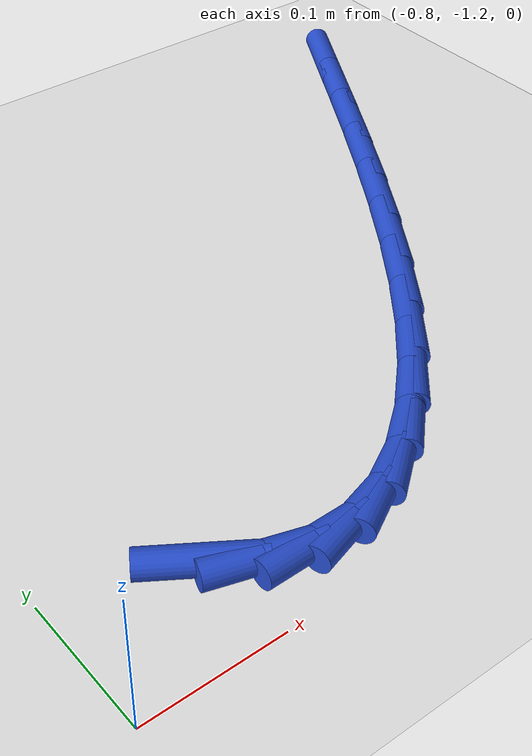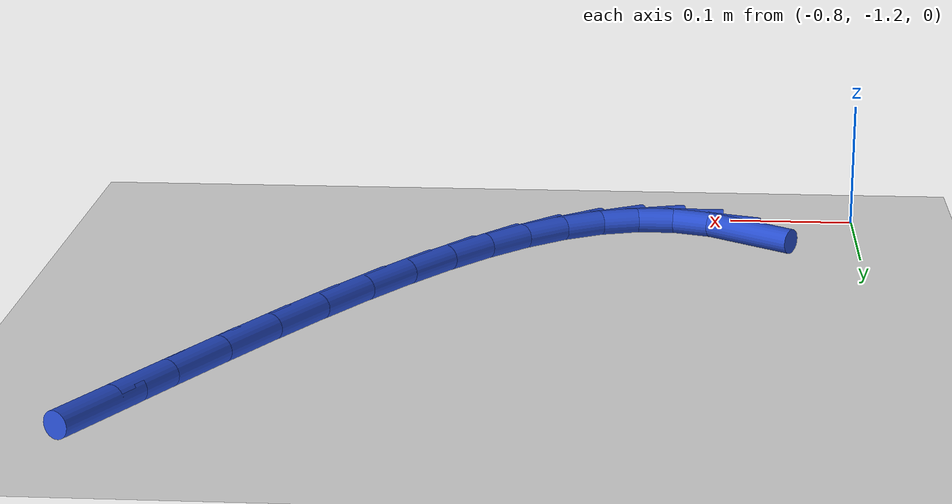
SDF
<sdf version="1.6">
 <world name="default">
  <model name="ground_plane">
   <static>1</static>
   <link name="link">
    <collision name="collision">
     <geometry><plane><normal>0 0 1</normal><size>100 100</size></plane></geometry>
     <surface><friction><ode><mu>100</mu><mu2>50</mu2></ode></friction></surface>
    </collision>
    <visual name="visual">
     <cast_shadows>0</cast_shadows>
     <geometry><plane><normal>0 0 1</normal><size>100 100</size></plane></geometry>
     <material>
      <script><uri>file://media/materials/scripts/gazebo.material</uri><name>Gazebo/WhiteGlow</name></script>
     </material>
    </visual>
   </link>
  </model>
  <model name="line">
   <link name="link_157">
    <pose>-0.7122693044522589 -1.13645913274962 0.01 0 1.57 -0.5885300878994439</pose>
    <collision name="collision">
     <geometry><cylinder><radius>0.01</radius><length>0.08</length></cylinder></geometry>
    </collision>
    <visual name="visual">
     <material>
      <script><name>Gazebo/Blue</name><uri>file://media/materials/scripts/gazebo.material</uri></script>
     </material>
     <geometry><cylinder><radius>0.01</radius><length>0.08</length></cylinder></geometry>
    </visual>
   </link>
   <link name="link_158">
    <pose>-0.6825759281236068 -1.1562773489614775 0.01 0 1.57 -0.3027651904013281</pose>
    <collision name="collision">
     <geometry><cylinder><radius>0.01</radius><length>0.08</length></cylinder></geometry>
    </collision>
    <visual name="visual">
     <material>
      <script><name>Gazebo/Blue</name><uri>file://media/materials/scripts/gazebo.material</uri></script>
     </material>
     <geometry><cylinder><radius>0.01</radius><length>0.08</length></cylinder></geometry>
    </visual>
   </link>
   <link name="link_159">
    <pose>-0.6526168572189454 -1.1656356231847373 0.01 0 1.57 0.008405451407896595</pose>
    <collision name="collision">
     <geometry><cylinder><radius>0.01</radius><length>0.08</length></cylinder></geometry>
    </collision>
    <visual name="visual">
     <material>
      <script><name>Gazebo/Blue</name><uri>file://media/materials/scripts/gazebo.material</uri></script>
     </material>
     <geometry><cylinder><radius>0.01</radius><length>0.08</length></cylinder></geometry>
    </visual>
   </link>
   <link name="link_160">
    <pose>-0.6224620434325002 -1.1653821523933396 0.01 0 1.57 0.2893728049764073</pose>
    <collision name="collision">
     <geometry><cylinder><radius>0.01</radius><length>0.08</length></cylinder></geometry>
    </collision>
    <visual name="visual">
     <material>
      <script><name>Gazebo/Blue</name><uri>file://media/materials/scripts/gazebo.material</uri></script>
     </material>
     <geometry><cylinder><radius>0.01</radius><length>0.08</length></cylinder></geometry>
    </visual>
   </link>
   <link name="link_161">
    <pose>-0.5921816678252931 -1.1563667801778714 0.01 0 1.57 0.5089664509785056</pose>
    <collision name="collision">
     <geometry><cylinder><radius>0.01</radius><length>0.08</length></cylinder></geometry>
    </collision>
    <visual name="visual">
     <material>
      <script><name>Gazebo/Blue</name><uri>file://media/materials/scripts/gazebo.material</uri></script>
     </material>
     <geometry><cylinder><radius>0.01</radius><length>0.08</length></cylinder></geometry>
    </visual>
   </link>
   <link name="link_162">
    <pose>-0.5618459114583457 -1.1394393501289228 0.01 0 1.57 0.669346000665174</pose>
    <collision name="collision">
     <geometry><cylinder><radius>0.01</radius><length>0.08</length></cylinder></geometry>
    </collision>
    <visual name="visual">
     <material>
      <script><name>Gazebo/Blue</name><uri>file://media/materials/scripts/gazebo.material</uri></script>
     </material>
     <geometry><cylinder><radius>0.01</radius><length>0.08</length></cylinder></geometry>
    </visual>
   </link>
   <link name="link_163">
    <pose>-0.5315249553926791 -1.1154497058370814 0.01 0 1.57 0.7848362692006946</pose>
    <collision name="collision">
     <geometry><cylinder><radius>0.01</radius><length>0.08</length></cylinder></geometry>
    </collision>
    <visual name="visual">
     <material>
      <script><name>Gazebo/Blue</name><uri>file://media/materials/scripts/gazebo.material</uri></script>
     </material>
     <geometry><cylinder><radius>0.01</radius><length>0.08</length></cylinder></geometry>
    </visual>
   </link>
   <link name="link_164">
    <pose>-0.5012889806893143 -1.085247690892937 0.01 0 1.57 0.8687403493943604</pose>
    <collision name="collision">
     <geometry><cylinder><radius>0.01</radius><length>0.08</length></cylinder></geometry>
    </collision>
    <visual name="visual">
     <material>
      <script><name>Gazebo/Blue</name><uri>file://media/materials/scripts/gazebo.material</uri></script>
     </material>
     <geometry><cylinder><radius>0.01</radius><length>0.08</length></cylinder></geometry>
    </visual>
   </link>
   <link name="link_165">
    <pose>-0.47120816840927304 -1.049683148887078 0.01 0 1.57 0.9305360280625101</pose>
    <collision name="collision">
     <geometry><cylinder><radius>0.01</radius><length>0.08</length></cylinder></geometry>
    </collision>
    <visual name="visual">
     <material>
      <script><name>Gazebo/Blue</name><uri>file://media/materials/scripts/gazebo.material</uri></script>
     </material>
     <geometry><cylinder><radius>0.01</radius><length>0.08</length></cylinder></geometry>
    </visual>
   </link>
   <link name="link_166">
    <pose>-0.44135269961357715 -1.009605923410094 0.01 0 1.57 0.9764908672191585</pose>
    <collision name="collision">
     <geometry><cylinder><radius>0.01</radius><length>0.08</length></cylinder></geometry>
    </collision>
    <visual name="visual">
     <material>
      <script><name>Gazebo/Blue</name><uri>file://media/materials/scripts/gazebo.material</uri></script>
     </material>
     <geometry><cylinder><radius>0.01</radius><length>0.08</length></cylinder></geometry>
    </visual>
   </link>
   <link name="link_167">
    <pose>-0.4117927553632467 -0.9658658580525729 0.01 0 1.57 1.0106757790673189</pose>
    <collision name="collision">
     <geometry><cylinder><radius>0.01</radius><length>0.08</length></cylinder></geometry>
    </collision>
    <visual name="visual">
     <material>
      <script><name>Gazebo/Blue</name><uri>file://media/materials/scripts/gazebo.material</uri></script>
     </material>
     <geometry><cylinder><radius>0.01</radius><length>0.08</length></cylinder></geometry>
    </visual>
   </link>
   <link name="link_168">
    <pose>-0.38259851671930367 -0.9193127964051035 0.01 0 1.57 1.0357191823319958</pose>
    <collision name="collision">
     <geometry><cylinder><radius>0.01</radius><length>0.08</length></cylinder></geometry>
    </collision>
    <visual name="visual">
     <material>
      <script><name>Gazebo/Blue</name><uri>file://media/materials/scripts/gazebo.material</uri></script>
     </material>
     <geometry><cylinder><radius>0.01</radius><length>0.08</length></cylinder></geometry>
    </visual>
   </link>
   <link name="link_169">
    <pose>-0.3538401647427691 -0.8707965820582753 0.01 0 1.57 1.0532837434019107</pose>
    <collision name="collision">
     <geometry><cylinder><radius>0.01</radius><length>0.08</length></cylinder></geometry>
    </collision>
    <visual name="visual">
     <material>
      <script><name>Gazebo/Blue</name><uri>file://media/materials/scripts/gazebo.material</uri></script>
     </material>
     <geometry><cylinder><radius>0.01</radius><length>0.08</length></cylinder></geometry>
    </visual>
   </link>
   <link name="link_170">
    <pose>-0.3255878804946647 -0.8211670586026767 0.01 0 1.57 1.0643457873698208</pose>
    <collision name="collision">
     <geometry><cylinder><radius>0.01</radius><length>0.08</length></cylinder></geometry>
    </collision>
    <visual name="visual">
     <material>
      <script><name>Gazebo/Blue</name><uri>file://media/materials/scripts/gazebo.material</uri></script>
     </material>
     <geometry><cylinder><radius>0.01</radius><length>0.08</length></cylinder></geometry>
    </visual>
   </link>
   <link name="link_171">
    <pose>-0.2979118450360116 -0.7712740696288968 0.01 0 1.57 1.0693404668952362</pose>
    <collision name="collision">
     <geometry><cylinder><radius>0.01</radius><length>0.08</length></cylinder></geometry>
    </collision>
    <visual name="visual">
     <material>
      <script><name>Gazebo/Blue</name><uri>file://media/materials/scripts/gazebo.material</uri></script>
     </material>
     <geometry><cylinder><radius>0.01</radius><length>0.08</length></cylinder></geometry>
    </visual>
   </link>
   <link name="link_172">
    <pose>-0.2708822394278315 -0.7219674587275255 0.01 0 1.57 1.068205261272318</pose>
    <collision name="collision">
     <geometry><cylinder><radius>0.01</radius><length>0.08</length></cylinder></geometry>
    </collision>
    <visual name="visual">
     <material>
      <script><name>Gazebo/Blue</name><uri>file://media/materials/scripts/gazebo.material</uri></script>
     </material>
     <geometry><cylinder><radius>0.01</radius><length>0.08</length></cylinder></geometry>
    </visual>
   </link>
  </model>
 </world>
</sdf>
